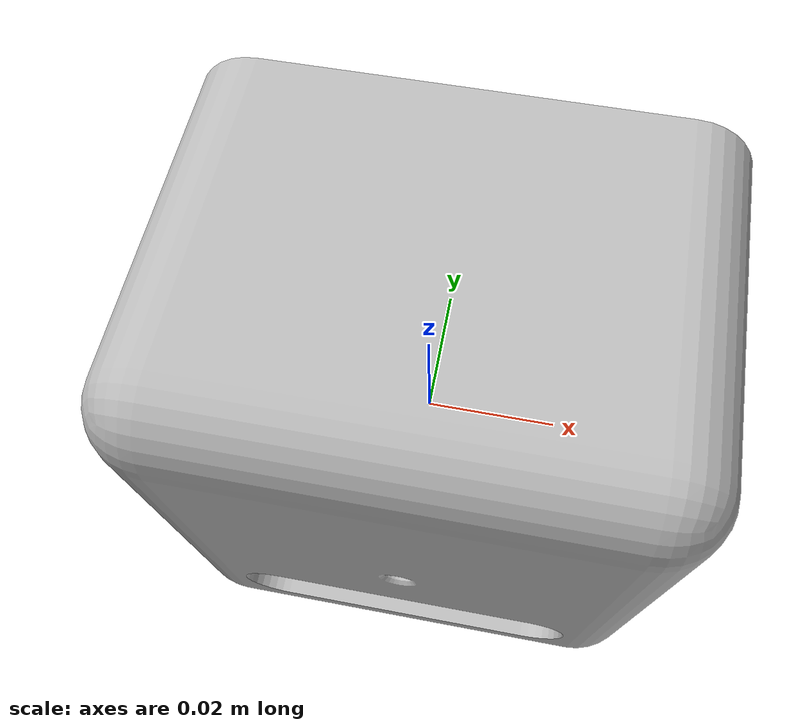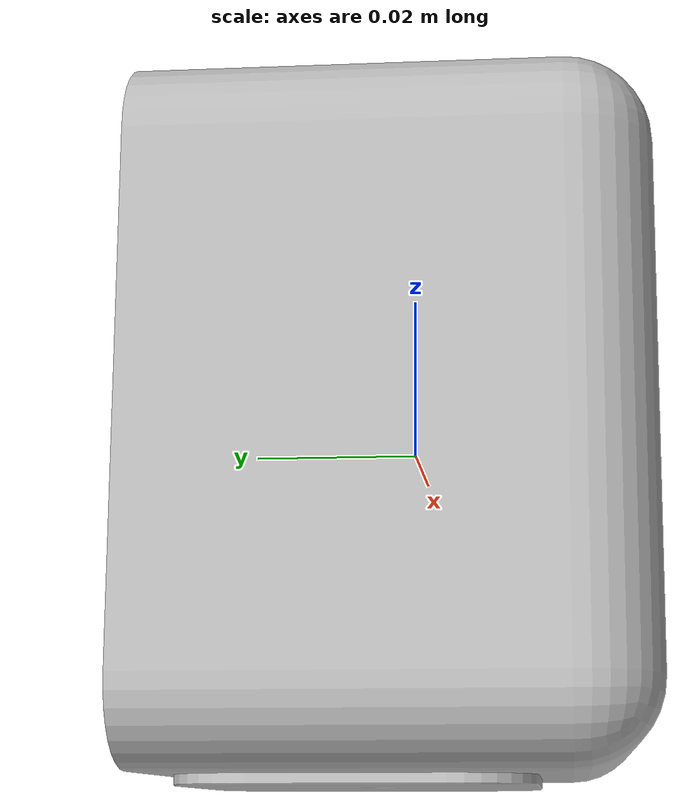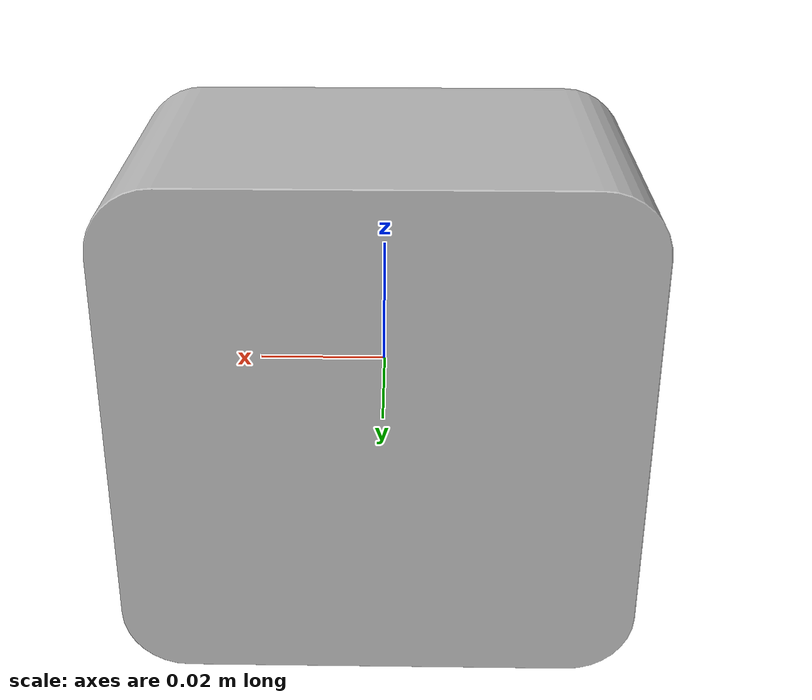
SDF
<?xml version="1.0" ?>
<sdf version="1.6">
	<model name="ViveBaseStation">
		<link name="ViveBaseStation">
			<pose frame="">0.0 0.0 0.0 0.0 0.0 0.0</pose>
			<inertial>
				<pose frame="">0 0 0 0 0 0</pose>
				<mass>0.001</mass>
				<inertia>
					<ixx>0.001</ixx>
					<ixy>0.001</ixy>
					<ixz>0.001</ixz>
					<iyy>0.001</iyy>
					<iyz>0.001</iyz>
					<izz>0.001</izz>
				</inertia>
			</inertial>
			<collision name="ViveBaseStation_collision">
				<geometry>
					<mesh>
						<uri>model://ViveBaseStation/meshes/CAD/ViveBaseStation.stl</uri>
						<scale>0.001 0.001 0.001</scale>
					</mesh>
				</geometry>
			</collision>
			<visual name="ViveBaseStation_visual">
				<geometry>
					<mesh>
						<uri>model://ViveBaseStation/meshes/CAD/ViveBaseStation.stl</uri>
						<scale>0.001 0.001 0.001</scale>
					</mesh>
				</geometry>
				<plugin name="LighthouseVisualPlugin" filename="libLighthouseVisualPlugin.so"/>
			</visual>
		</link>
	</model>
</sdf>
